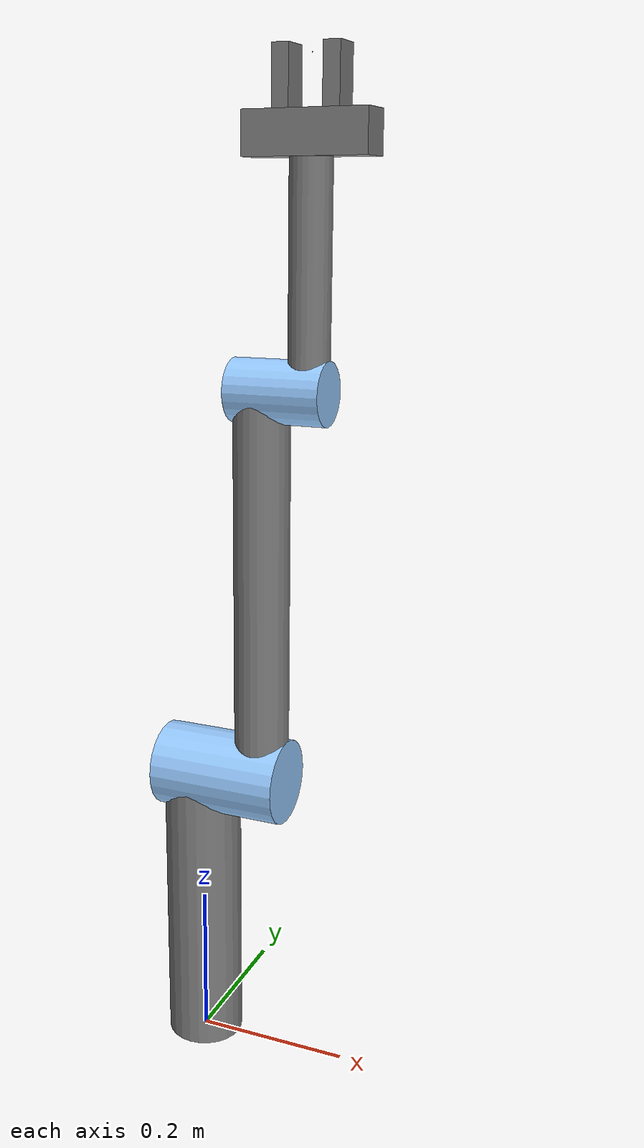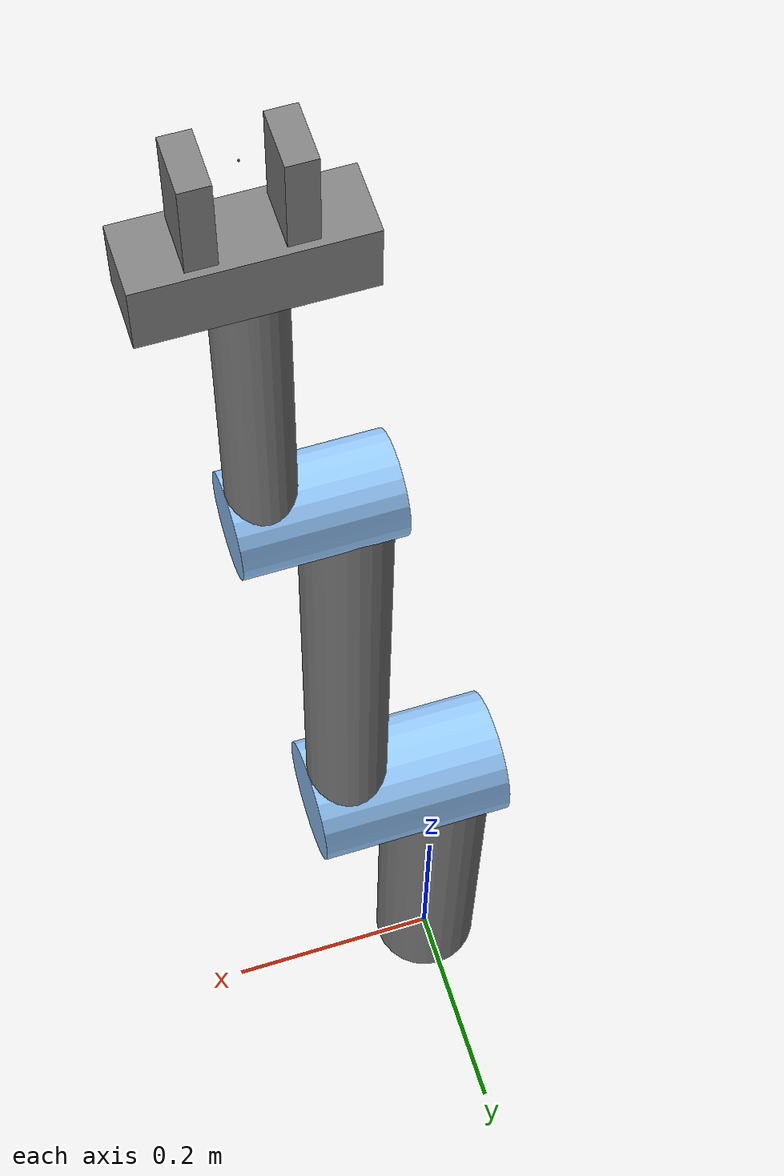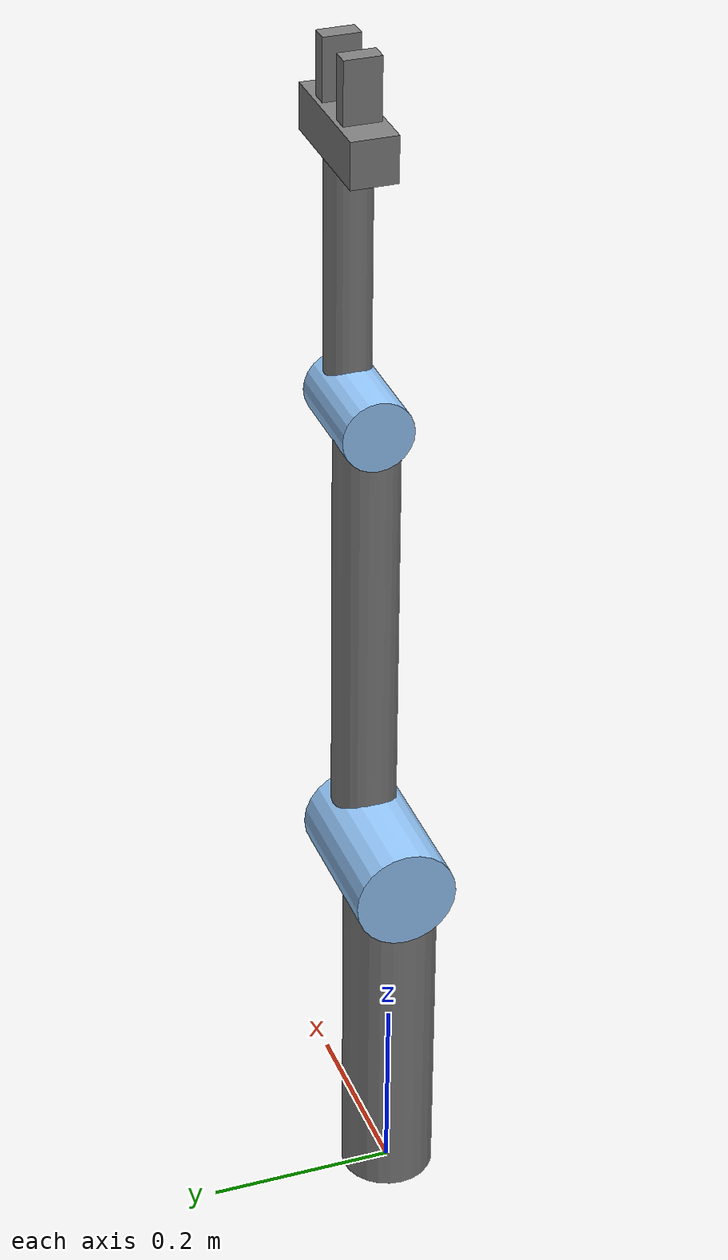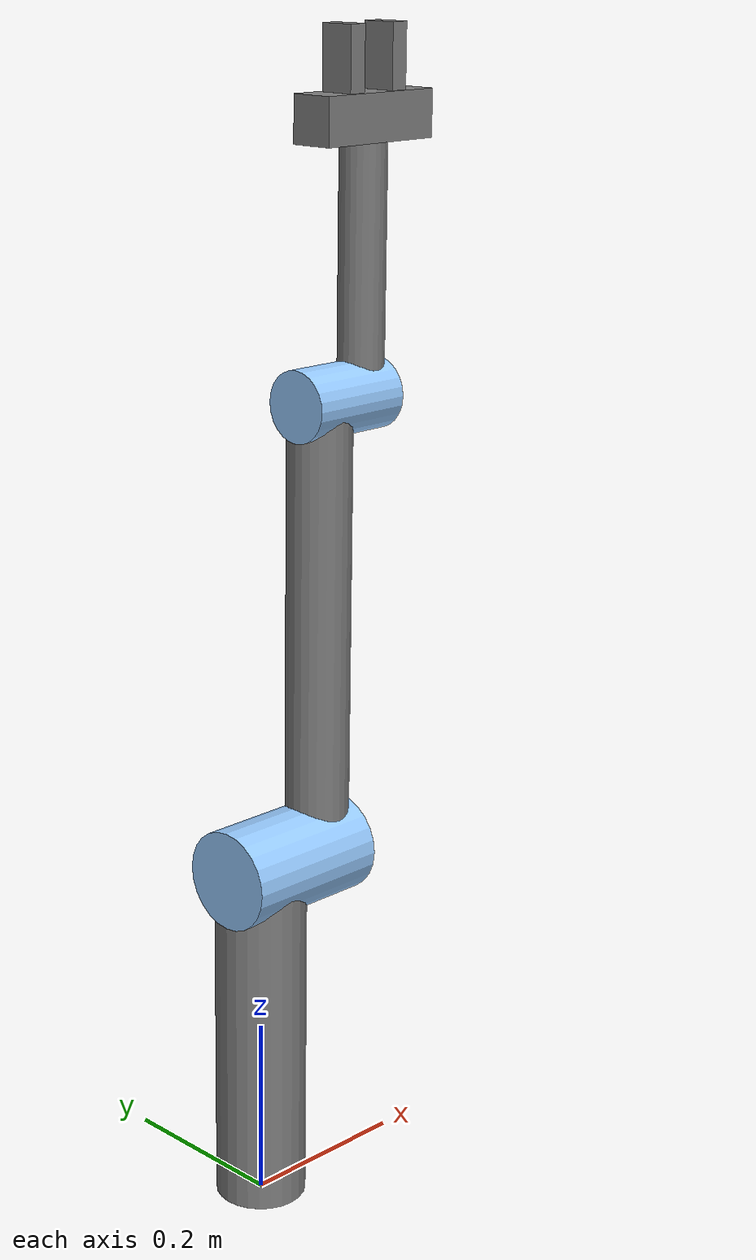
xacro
<?xml version="1.0"?>
<robot xmlns:xacro="http://www.ros.org/wiki/xacro" name="rrr_arm">

  <xacro:property name="M_PI" value="3.14159"/>
  <xacro:property name="mass_1" value="20" />
  <xacro:property name="mass_2" value="5" />
  <xacro:property name="mass_3" value="3" />
  <xacro:property name="mass_4" value="3" />
  <xacro:property name="mass_5" value="1" />
  <xacro:property name="mass_6" value="0.2" />

  <xacro:property name="radius_1" value="0.1" />
  <xacro:property name="radius_2" value="0.05" />
  <xacro:property name="radius_3" value="0.035" />
  <xacro:property name="radius_4" value="0.025" />
  <xacro:property name="radius_5" value="0.025" />
  <xacro:property name="radius_6" value="0.02" />

  <xacro:property name="length_1" value="0.15" />
  <xacro:property name="length_2" value="0.4" />
  <xacro:property name="length_3" value="0.5" />
  <xacro:property name="length_4" value="0.3" />
  <xacro:property name="length_5" value="0.15" />
  <xacro:property name="length_6" value="0.07" />

  <material name="Black"><color rgba="0.0 0.0 0.0 1.0"/></material>
  <material name="Red"><color rgba="0.8 0.0 0.0 1.0"/></material>
  <material name="Blue"><color rgba="0.0 0.0 1.0 1.0"/></material>
  <material name="LightBlue"><color rgba="0.589 0.793 1.0 1.0"/></material>
  <material name="Grey"><color rgba="0.5 0.5 0.5 1.0"/></material>
  <material name="White"><color rgba="1.0 1.0 1.0 1.0"/></material>

  <xacro:macro name="inertial_block" params="mass length radius">
    <inertial>
      <origin xyz="0 0 ${length/2}" rpy="0 0 0"/>
      <mass value="${mass}"/>
      <inertia
        ixx="${mass / 12.0 * (2*radius*2*radius + length*length)}" ixy="0.0" ixz="0.0"
        iyy="${mass / 12.0 * (length*length + 2*radius*2*radius)}" iyz="0.0"
        izz="${mass / 12.0 * (2*radius*2*radius + 2*radius*2*radius)}"/>
    </inertial>
  </xacro:macro>

  <xacro:macro name="gazebo_grey_link_color_block" params="link_name">
    <gazebo reference="${link_name}">
      <visual>
        <material>
          <ambient>0.5 0.5 0.5 1.0</ambient>
          <diffuse>0.56666695 0.56666695 0.56666695 1.0</diffuse>
          <specular>0.6000003 0.6000003 0.6000003 1.0</specular>
        </material>
      </visual>
    </gazebo>
  </xacro:macro>

  <xacro:macro name="gazebo_blue_link_color_block" params="link_name">
    <gazebo reference="${link_name}">
      <visual>
        <material>
          <ambient>0.589 0.793 1.0 1.0</ambient>
          <diffuse>0.56666695 0.56666695 0.56666695 1.0</diffuse>
          <specular>0.6000003 0.6000003 0.6000003 1.0</specular>
        </material>
      </visual>
    </gazebo>
  </xacro:macro>

  <link name="world"/>
    <joint name="world_joint" type="fixed">
    <origin xyz="0 0 0" rpy="0 0 0"/>
    <parent link="world"/>
    <child link="base_link"/>
  </joint>

  <link name="base_link">
    <xacro:inertial_block mass="${0.001}" length="${0.001}" radius="${0.001}"/>
  </link>

  <joint name="joint_1_fixed" type="fixed">
    <origin xyz="0 0 0" rpy="0 0 0"/>
    <parent link="base_link"/>
    <child link="link_1"/>
  </joint>

  <link name="link_1">
    <xacro:inertial_block mass="${mass_2}" length="${length_2}" radius="${radius_2}"/>
    <visual>
      <origin xyz="0 0 ${length_2/2.0}" rpy="0 0 0"/>
      <geometry><cylinder radius="${radius_2}" length="${length_2}"/></geometry>
      <material name="Grey"/>
    </visual>
    <collision>
      <origin xyz="0 0 ${length_2/2.0}" rpy="0 0 0"/>
      <geometry><cylinder radius="${radius_2}" length="${length_2}"/></geometry>
    </collision>
  </link>
  <xacro:gazebo_grey_link_color_block link_name="link_1"/>

  <link name="link_1_endlink">
    <xacro:inertial_block mass="${mass_2/3.0}" length="${2*radius_2+2*radius_3}" radius="${radius_2}"/>
    <visual>
      <origin xyz="0 0 ${(2*radius_2+2*radius_3)/2.0}" rpy="0 0 0"/>
      <geometry><cylinder radius="${radius_2*1.1}" length="${2*radius_2+2*radius_3}"/></geometry>
      <material name="LightBlue"/>
    </visual>
    <collision>
      <origin xyz="0 0 ${(2*radius_2+2*radius_3)/2.0}" rpy="0 0 0"/>
      <geometry><cylinder radius="${radius_2*1.1}" length="${2*radius_2+2*radius_3}"/></geometry>
    </collision>
  </link>
  <xacro:gazebo_blue_link_color_block link_name="link_1_endlink"/>

  <joint name="link_1_endjoint" type="fixed">
    <origin xyz="${-radius_2} 0 ${length_2 - 0.01}" rpy="0 ${M_PI/2.0} 0"/>
    <parent link="link_1"/>
    <child link="link_1_endlink"/>
  </joint>

  <gazebo reference="link_1_endjoint">
    <disableFixedJointLumping>true</disableFixedJointLumping>
    <preserveFixedJoint>true</preserveFixedJoint>
  </gazebo>

  <joint name="joint_2" type="revolute">
    <origin xyz="${radius_2 + radius_3} 0 ${length_2}" rpy="0 0 0"/>
    <parent link="link_1"/>
    <child link="link_2"/>
    <axis xyz="1 0 0"/>
    <limit lower="0.0" upper="${M_PI * 2}" effort="300.0" velocity="1.0"/>
  </joint>

  <link name="link_2">
    <xacro:inertial_block mass="${mass_3}" length="${length_3}" radius="${radius_3}"/>
    <visual>
      <origin xyz="0 0 ${length_3/2.0}" rpy="0 0 0"/>
      <geometry><cylinder radius="${radius_3}" length="${length_3}"/></geometry>
      <material name="Grey"/>
    </visual>
    <collision>
      <origin xyz="0 0 ${length_3/2.0}" rpy="0 0 0"/>
      <geometry><cylinder radius="${radius_3}" length="${length_3}"/></geometry>
    </collision>
  </link>
  <xacro:gazebo_grey_link_color_block link_name="link_2"/>

  <link name="link_2_endlink">
    <xacro:inertial_block mass="${mass_3/3.0}" length="${2*radius_3+2*radius_4}" radius="${radius_3}"/>
    <visual>
      <origin xyz="0 0 ${(2*radius_3+2*radius_4)/2.0}" rpy="0 0 0"/>
      <geometry><cylinder radius="${radius_3*1.1}" length="${2*radius_3+2*radius_4}"/></geometry>
      <material name="LightBlue"/>
    </visual>
    <collision>
      <origin xyz="0 0 ${(2*radius_3+2*radius_4)/2.0}" rpy="0 0 0"/>
      <geometry><cylinder radius="${radius_3*1.1}" length="${2*radius_3+2*radius_4}"/></geometry>
    </collision>
  </link>
  <xacro:gazebo_blue_link_color_block link_name="link_2_endlink"/>

  <joint name="link_2_endjoint" type="fixed">
    <origin xyz="${-radius_3} 0 ${length_3 - 0.01}" rpy="0 ${M_PI/2.0} 0"/>
    <parent link="link_2"/>
    <child link="link_2_endlink"/>
  </joint>

  <gazebo reference="link_2_endjoint">
    <disableFixedJointLumping>true</disableFixedJointLumping>
    <preserveFixedJoint>true</preserveFixedJoint>
  </gazebo>

  <joint name="joint_3" type="revolute">
    <origin xyz="${radius_3 + radius_4} 0 ${length_3 - radius_3}" rpy="0 0 0"/>
    <parent link="link_2"/>
    <child link="link_3"/>
    <axis xyz="1 0 0"/>
    <limit lower="0.0" upper="${M_PI * 2}" effort="300.0" velocity="1.0"/>
  </joint>

  <link name="link_3">
    <xacro:inertial_block mass="${mass_4}" length="${length_4}" radius="${radius_4}"/>
    <visual>
      <origin xyz="0 0 ${length_4/2.0}" rpy="0 0 0"/>
      <geometry><cylinder radius="${radius_4}" length="${length_4}"/></geometry>
      <material name="Grey"/>
    </visual>
    <collision>
      <origin xyz="0 0 ${length_4/2.0}" rpy="0 0 0"/>
      <geometry><cylinder radius="${radius_4}" length="${length_4}"/></geometry>
    </collision>
  </link>
  <xacro:gazebo_grey_link_color_block link_name="link_3"/>

  <joint name="joint_4" type="revolute">
    <origin xyz="0 0 ${length_4}" rpy="0 0 0"/>
    <parent link="link_3"/>
    <child link="link_4"/>
    <axis xyz="1 0 0"/>
    <limit lower="-${M_PI}" upper="${M_PI}" effort="300.0" velocity="1.0"/>
</joint>

  <link name="link_4">
    <xacro:inertial_block mass="${mass_5}" length="${length_5}" radius="${radius_5}"/>
    <visual>
      <origin xyz="0 0 ${radius_5/2.0}" rpy="0 ${M_PI/2.0} 0"/>
      <geometry><box size="${radius_5*2} ${radius_5*2} ${length_5}"/></geometry>
      <material name="Grey"/>
    </visual>
    <collision>
      <origin xyz="0 0 ${radius_5/2.0}" rpy="0 0 0"/>
      <geometry><box size="${radius_5*2} ${radius_5*2} ${length_5}"/></geometry>
    </collision>
  </link>
  <xacro:gazebo_grey_link_color_block link_name="link_4"/>

  <joint name="gripper_joint_1" type="prismatic">
    <origin xyz="0 0 ${radius_5 + length_6/2.0}" rpy="0 0 0"/>
    <parent link="link_4"/>
    <child link="gripper_link_1"/>
    <axis xyz="1 0 0"/>
    <limit lower="${radius_6/2.0}" upper="0.05" effort="100.0" velocity="1.0"/>
  </joint>

  <joint name="gripper_joint_2" type="prismatic">
    <origin xyz="0 0 ${radius_5 + length_6/2.0}" rpy="0 0 0"/>
    <parent link="link_4"/>
    <child link="gripper_link_2"/>
    <axis xyz="1 0 0"/>
    <limit lower="-0.05" upper="${-radius_6/2.0}" effort="100.0" velocity="1.0"/>
  </joint>

  <joint name="gripper_frame_joint" type="fixed">
    <origin xyz="0 0 ${radius_5*2 + length_6/2 + 0.01}" rpy="0 0 0"/>
    <parent link="link_4"/>
    <child link="gripper_frame_cp"/>
  </joint>

  <link name="gripper_link_1">
    <xacro:inertial_block mass="${mass_6}" length="${length_6}" radius="${radius_6}"/>
    <visual>
      <origin xyz="0 0 ${radius_6/2.0}" rpy="0 0 0"/>
      <geometry><box size="${radius_6} ${radius_6*2} ${length_6}"/></geometry>
      <material name="Grey"/>
    </visual>
    <collision>
      <origin xyz="0 0 ${radius_6/2.0}" rpy="0 0 0"/>
      <geometry><box size="${radius_6*2} ${radius_6*2} ${length_6}"/></geometry>
    </collision>
  </link>
  <xacro:gazebo_grey_link_color_block link_name="gripper_link_1"/>

  <link name="gripper_link_2">
    <xacro:inertial_block mass="${mass_6}" length="${length_6}" radius="${radius_6}"/>
    <visual>
      <origin xyz="0 0 ${radius_6/2.0}" rpy="0 0 0"/>
      <geometry><box size="${radius_6} ${radius_6*2} ${length_6}"/></geometry>
      <material name="Grey"/>
    </visual>
    <collision>
      <origin xyz="0 0 ${radius_6/2.0}" rpy="0 0 0"/>
      <geometry><box size="${radius_6*2} ${radius_6*2} ${length_6}"/></geometry>
    </collision>
  </link>
  <xacro:gazebo_grey_link_color_block link_name="gripper_link_2"/>

  <link name="gripper_frame_cp">
    <xacro:inertial_block mass="${0.001}" length="${0.001}" radius="${0.001}"/>
    <visual>
      <origin xyz="0 0 0" rpy="0 0 0"/>
      <geometry><box size="${0.001} ${0.001} ${0.001}"/></geometry>
      <material name="Grey"/>
    </visual>
    <collision>
      <origin xyz="0 0 0" rpy="0 0 0"/>
      <geometry><box size="${0.001} ${0.001} ${0.001}"/></geometry>
    </collision>
  </link>

  <ros2_control name="GazeboSystem" type="system">
  <hardware>
    <plugin>gazebo_ros2_control/GazeboSystem</plugin>
  </hardware>

  <joint name="joint_2">
    <command_interface name="position"/>
    <state_interface name="position"/>
    <state_interface name="velocity"/>
  </joint>

  <joint name="joint_3">
    <command_interface name="position"/>
    <state_interface name="position"/>
    <state_interface name="velocity"/>
  </joint>

  <joint name="joint_4">
    <command_interface name="position"/>
    <state_interface name="position"/>
    <state_interface name="velocity"/>
  </joint>

  <joint name="gripper_joint_1">
    <command_interface name="position"/>
    <state_interface name="position"/>
    <state_interface name="velocity"/>
  </joint>

  <joint name="gripper_joint_2">
    <command_interface name="position"/>
    <state_interface name="position"/>
    <state_interface name="velocity"/>
  </joint>
</ros2_control>

  <gazebo>
    <plugin filename="libgazebo_ros2_control.so" name="gazebo_ros2_control">
      <parameters>$(find rrr_arm)/config/rrr_arm_controllers.yaml</parameters>
    </plugin>
  </gazebo>

</robot>
